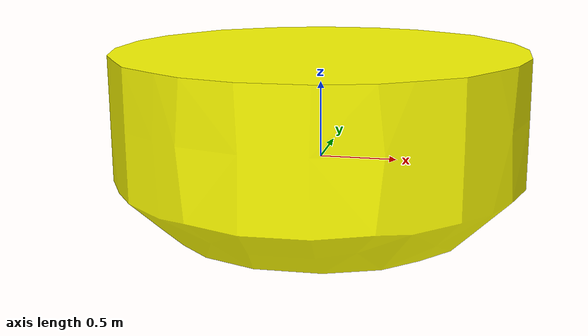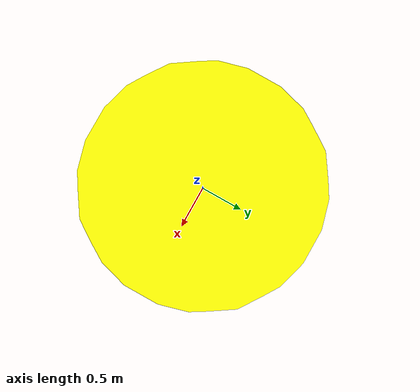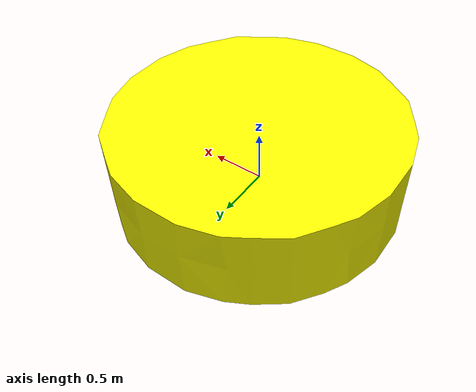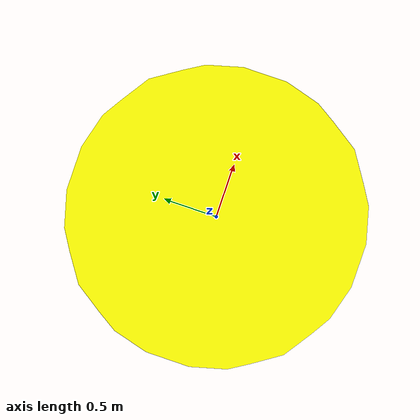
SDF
<?xml version="1.0" ?>
<sdf version="1.8">
  <model name="mbari_buoy">
    <link name="base_link">
      <pose>0 0 0 0 0 0</pose>
      <inertial>
        <pose>0 0 -0.24 0 0 0</pose>
        <mass>2450</mass>
        <inertia>
          <ixx>1429</ixx>
          <ixy>4.70</ixy>
          <ixz>6.74</ixz>
          <iyy>1476</iyy>
          <iyz>30.5</iyz>
          <izz>670.3</izz>
        </inertia>
      </inertial>
      <visual name="visual_Buoy">
        <pose>0 0 -2.27 0 0 0</pose>
        <geometry>
          <mesh>
            <uri>model://mbari_buoy/meshes/buoy_float.stl</uri>
          </mesh>
        </geometry>
        <material>
          <ambient>1.0 1.0 0.0 1</ambient>
          <diffuse>1.0 1.0 0.0 1</diffuse>
          <specular>1.0 1.0 0.0 1</specular>
        </material>
      </visual>
      <collision name="collision">
        <pose>0 0 0 0 0 0 </pose>
        <geometry>
          <mesh>
            <uri>model://mbari_buoy/meshes/buoy_float_collision_wp_f316.stl</uri>
          </mesh>
        </geometry>
      </collision>
    </link>
  </model>
</sdf>
